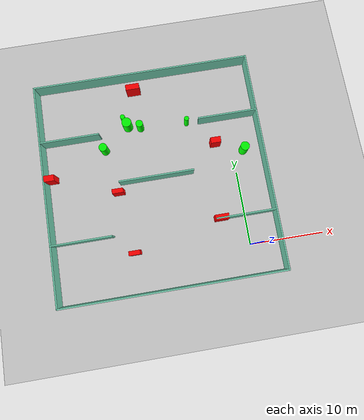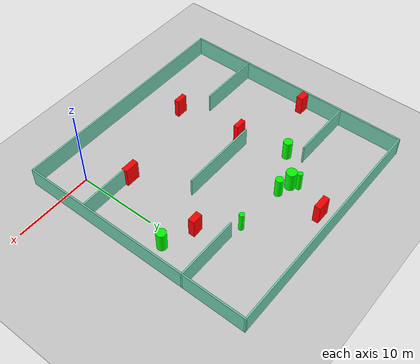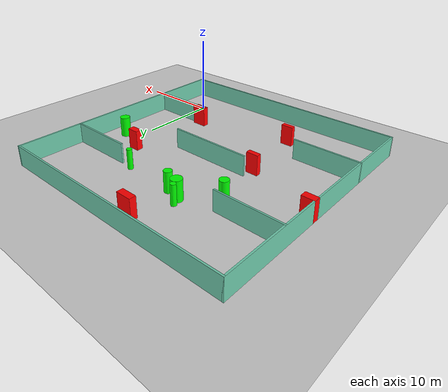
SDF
<sdf version="1.7">
 <world name="default">
  <light name="sun" type="directional">
   <pose>0 0 10 0 -0 0</pose>
   <diffuse>0.8 0.8 0.8 1</diffuse>
   <specular>0.2 0.2 0.2 1</specular>
   <attenuation>
    <range>1000</range>
    <constant>0.9</constant>
    <linear>0.01</linear>
    <quadratic>0.001</quadratic>
   </attenuation>
   <direction>-0.5 0.1 -0.9</direction>
   <spot><inner_angle>0</inner_angle><outer_angle>0</outer_angle><falloff>0</falloff></spot>
  </light>
  <model name="ground_plane">
   <static>1</static>
   <link name="link">
    <collision name="collision">
     <geometry><plane><normal>0 0 1</normal><size>100 100</size></plane></geometry>
     <surface>
      <contact><collide_bitmask>65535</collide_bitmask></contact>
      <friction><ode><mu>100</mu><mu2>50</mu2></ode></friction>
     </surface>
    </collision>
    <visual name="visual">
     <cast_shadows>0</cast_shadows>
     <geometry><plane><normal>0 0 1</normal><size>100 100</size></plane></geometry>
     <material>
      <script><uri>file://media/materials/scripts/gazebo.material</uri><name>Gazebo/Grey</name></script>
     </material>
    </visual>
   </link>
  </model>
  <gravity>0 0 -9.8</gravity>
  <magnetic_field>6e-06 2.3e-05 -4.2e-05</magnetic_field>
  <atmosphere type="adiabatic"/>
  <physics type="ode">
   <max_step_size>0.001</max_step_size>
   <real_time_factor>1</real_time_factor>
   <real_time_update_rate>1000</real_time_update_rate>
  </physics>
  <scene><ambient>0.4 0.4 0.4 1</ambient><background>0.7 0.7 0.7 1</background><shadows>1</shadows></scene>
  <spherical_coordinates>
   <surface_model>EARTH_WGS84</surface_model>
   <latitude_deg>0</latitude_deg>
   <longitude_deg>0</longitude_deg>
   <elevation>0</elevation>
   <heading_deg>0</heading_deg>
  </spherical_coordinates>
  <model name="my_base_walls">
   <link name="Wall_10">
    <collision name="Wall_10_Collision">
     <geometry><box><size>8.2 0.2 2.5</size></box></geometry>
     <pose>0 0 1.25 0 -0 0</pose>
    </collision>
    <visual name="Wall_10_Visual">
     <pose>0 0 1.25 0 -0 0</pose>
     <geometry><box><size>8.2 0.2 2.5</size></box></geometry>
     <material>
      <script><uri>file://media/materials/scripts/gazebo.material</uri><name>Gazebo/Grey</name></script>
      <ambient>0.435294 0.796078 0.67451 1</ambient>
     </material>
     <meta><layer>0</layer></meta>
    </visual>
    <pose>-11 -7 0 0 -0 0</pose>
   </link>
   <link name="Wall_12">
    <collision name="Wall_12_Collision">
     <geometry><box><size>8.2 0.2 2.5</size></box></geometry>
     <pose>0 0 1.25 0 -0 0</pose>
    </collision>
    <visual name="Wall_12_Visual">
     <pose>0 0 1.25 0 -0 0</pose>
     <geometry><box><size>8.2 0.2 2.5</size></box></geometry>
     <material>
      <script><uri>file://media/materials/scripts/gazebo.material</uri><name>Gazebo/Grey</name></script>
      <ambient>0.435294 0.796078 0.67451 1</ambient>
     </material>
     <meta><layer>0</layer></meta>
    </visual>
    <pose>-11 7 0 0 -0 0</pose>
   </link>
   <link name="Wall_14">
    <collision name="Wall_14_Collision">
     <geometry><box><size>8.2 0.2 2.5</size></box></geometry>
     <pose>0 0 1.25 0 -0 0</pose>
    </collision>
    <visual name="Wall_14_Visual">
     <pose>0 0 1.25 0 -0 0</pose>
     <geometry><box><size>8.2 0.2 2.5</size></box></geometry>
     <material>
      <script><uri>file://media/materials/scripts/gazebo.material</uri><name>Gazebo/Grey</name></script>
      <ambient>0.435294 0.796078 0.67451 1</ambient>
     </material>
     <meta><layer>0</layer></meta>
    </visual>
    <pose>11 7 0 0 -0 3.14159</pose>
   </link>
   <link name="Wall_16">
    <collision name="Wall_16_Collision">
     <geometry><box><size>10.2 0.2 2.5</size></box></geometry>
     <pose>0 0 1.25 0 -0 0</pose>
    </collision>
    <visual name="Wall_16_Visual">
     <pose>0 0 1.25 0 -0 0</pose>
     <geometry><box><size>10.2 0.2 2.5</size></box></geometry>
     <material>
      <script><uri>file://media/materials/scripts/gazebo.material</uri><name>Gazebo/Grey</name></script>
      <ambient>0.435294 0.796078 0.67451 1</ambient>
     </material>
     <meta><layer>0</layer></meta>
    </visual>
    <pose>0 0 0 0 -0 3.14159</pose>
   </link>
   <link name="Wall_2">
    <collision name="Wall_2_Collision">
     <geometry><box><size>30.2 0.2 2.5</size></box></geometry>
     <pose>0 0 1.25 0 -0 0</pose>
    </collision>
    <visual name="Wall_2_Visual">
     <pose>0 0 1.25 0 -0 0</pose>
     <geometry><box><size>30.2 0.2 2.5</size></box></geometry>
     <material>
      <script><uri>file://media/materials/scripts/gazebo.material</uri><name>Gazebo/Grey</name></script>
      <ambient>0.435294 0.796078 0.67451 1</ambient>
     </material>
     <meta><layer>0</layer></meta>
    </visual>
    <pose>0 -15 0 0 -0 3.14159</pose>
   </link>
   <link name="Wall_3">
    <collision name="Wall_3_Collision">
     <geometry><box><size>30.2 0.2 2.5</size></box></geometry>
     <pose>0 0 1.25 0 -0 0</pose>
    </collision>
    <visual name="Wall_3_Visual">
     <pose>0 0 1.25 0 -0 0</pose>
     <geometry><box><size>30.2 0.2 2.5</size></box></geometry>
     <material>
      <script><uri>file://media/materials/scripts/gazebo.material</uri><name>Gazebo/Grey</name></script>
      <ambient>0.435294 0.796078 0.67451 1</ambient>
     </material>
     <meta><layer>0</layer></meta>
    </visual>
    <pose>-15 0 0 0 -0 1.5708</pose>
   </link>
   <link name="Wall_4">
    <collision name="Wall_4_Collision">
     <geometry><box><size>30.2 0.2 2.5</size></box></geometry>
     <pose>0 0 1.25 0 -0 0</pose>
    </collision>
    <visual name="Wall_4_Visual">
     <pose>0 0 1.25 0 -0 0</pose>
     <geometry><box><size>30.2 0.2 2.5</size></box></geometry>
     <material>
      <script><uri>file://media/materials/scripts/gazebo.material</uri><name>Gazebo/Grey</name></script>
      <ambient>0.435294 0.796078 0.67451 1</ambient>
     </material>
     <meta><layer>0</layer></meta>
    </visual>
    <pose>0 15 0 0 -0 0</pose>
   </link>
   <link name="Wall_6">
    <collision name="Wall_6_Collision">
     <geometry><box><size>30.2 0.2 2.5</size></box></geometry>
     <pose>0 0 1.25 0 -0 0</pose>
    </collision>
    <visual name="Wall_6_Visual">
     <pose>0 0 1.25 0 -0 0</pose>
     <geometry><box><size>30.2 0.2 2.5</size></box></geometry>
     <material>
      <script><uri>file://media/materials/scripts/gazebo.material</uri><name>Gazebo/Grey</name></script>
      <ambient>0.435294 0.796078 0.67451 1</ambient>
     </material>
     <meta><layer>0</layer></meta>
    </visual>
    <pose>15 0 0 0 -0 1.5708</pose>
   </link>
   <link name="Wall_8">
    <collision name="Wall_8_Collision">
     <geometry><box><size>8.2 0.2 2.5</size></box></geometry>
     <pose>0 0 1.25 0 -0 0</pose>
    </collision>
    <visual name="Wall_8_Visual">
     <pose>0 0 1.25 0 -0 0</pose>
     <geometry><box><size>8.2 0.2 2.5</size></box></geometry>
     <material>
      <script><uri>file://media/materials/scripts/gazebo.material</uri><name>Gazebo/Grey</name></script>
      <ambient>0.435294 0.796078 0.67451 1</ambient>
     </material>
     <meta><layer>0</layer></meta>
    </visual>
    <pose>11 -7 0 0 -0 3.14159</pose>
   </link>
   <static>1</static>
   <pose>-11 11 0 0 -0 0</pose>
  </model>
  <model name="cylinder1">
   <static>1</static>
   <link name="link">
    <inertial>
     <mass>1</mass>
     <inertia><ixx>0.5</ixx><ixy>0</ixy><ixz>0</ixz><iyy>0.5</iyy><iyz>0</iyz><izz>1</izz></inertia>
    </inertial>
    <collision name="collision">
     <geometry><cylinder><radius>0.6599408084052335</radius><length>2.5</length></cylinder></geometry>
    </collision>
    <visual name="visual">
     <geometry><cylinder><radius>0.6599408084052335</radius><length>2.5</length></cylinder></geometry>
     <material>
      <ambient>0 1 0 1</ambient>
      <diffuse>0 1 0 1</diffuse>
      <specular>0.1 0.1 0.1 1</specular>
      <emissive>0 0 0 0</emissive>
     </material>
    </visual>
   </link>
   <pose>-13.935841101003437 19.024712092563004 1.25 0 0 0</pose>
  </model>
  <model name="cylinder2">
   <static>1</static>
   <link name="link">
    <inertial>
     <mass>1</mass>
     <inertia><ixx>0.5</ixx><ixy>0</ixy><ixz>0</ixz><iyy>0.5</iyy><iyz>0</iyz><izz>1</izz></inertia>
    </inertial>
    <collision name="collision">
     <geometry><cylinder><radius>0.3193071340591552</radius><length>2.5</length></cylinder></geometry>
    </collision>
    <visual name="visual">
     <geometry><cylinder><radius>0.3193071340591552</radius><length>2.5</length></cylinder></geometry>
     <material>
      <ambient>0 1 0 1</ambient>
      <diffuse>0 1 0 1</diffuse>
      <specular>0.1 0.1 0.1 1</specular>
      <emissive>0 0 0 0</emissive>
     </material>
    </visual>
   </link>
   <pose>-5.682111479979074 18.21949315594405 1.25 0 0 0</pose>
  </model>
  <model name="cylinder3">
   <static>1</static>
   <link name="link">
    <inertial>
     <mass>1</mass>
     <inertia><ixx>0.5</ixx><ixy>0</ixy><ixz>0</ixz><iyy>0.5</iyy><iyz>0</iyz><izz>1</izz></inertia>
    </inertial>
    <collision name="collision">
     <geometry><cylinder><radius>0.6067043016929332</radius><length>2.5</length></cylinder></geometry>
    </collision>
    <visual name="visual">
     <geometry><cylinder><radius>0.6067043016929332</radius><length>2.5</length></cylinder></geometry>
     <material>
      <ambient>0 1 0 1</ambient>
      <diffuse>0 1 0 1</diffuse>
      <specular>0.1 0.1 0.1 1</specular>
      <emissive>0 0 0 0</emissive>
     </material>
    </visual>
   </link>
   <pose>1.5121297173744601 13.057133490670005 1.25 0 0 0</pose>
  </model>
  <model name="cylinder4">
   <static>1</static>
   <link name="link">
    <inertial>
     <mass>1</mass>
     <inertia><ixx>0.5</ixx><ixy>0</ixy><ixz>0</ixz><iyy>0.5</iyy><iyz>0</iyz><izz>1</izz></inertia>
    </inertial>
    <collision name="collision">
     <geometry><cylinder><radius>0.48695035980506224</radius><length>2.5</length></cylinder></geometry>
    </collision>
    <visual name="visual">
     <geometry><cylinder><radius>0.48695035980506224</radius><length>2.5</length></cylinder></geometry>
     <material>
      <ambient>0 1 0 1</ambient>
      <diffuse>0 1 0 1</diffuse>
      <specular>0.1 0.1 0.1 1</specular>
      <emissive>0 0 0 0</emissive>
     </material>
    </visual>
   </link>
   <pose>-12.217194983782557 18.564566263395136 1.25 0 0 0</pose>
  </model>
  <model name="cylinder5">
   <static>1</static>
   <link name="link">
    <inertial>
     <mass>1</mass>
     <inertia><ixx>0.5</ixx><ixy>0</ixy><ixz>0</ixz><iyy>0.5</iyy><iyz>0</iyz><izz>1</izz></inertia>
    </inertial>
    <collision name="collision">
     <geometry><cylinder><radius>0.32706972017480823</radius><length>2.5</length></cylinder></geometry>
    </collision>
    <visual name="visual">
     <geometry><cylinder><radius>0.32706972017480823</radius><length>2.5</length></cylinder></geometry>
     <material>
      <ambient>0 1 0 1</ambient>
      <diffuse>0 1 0 1</diffuse>
      <specular>0.1 0.1 0.1 1</specular>
      <emissive>0 0 0 0</emissive>
     </material>
    </visual>
   </link>
   <pose>-14.362791896280584 19.89371892074397 1.25 0 0 0</pose>
  </model>
  <model name="cylinder6">
   <static>1</static>
   <link name="link">
    <inertial>
     <mass>1</mass>
     <inertia><ixx>0.5</ixx><ixy>0</ixy><ixz>0</ixz><iyy>0.5</iyy><iyz>0</iyz><izz>1</izz></inertia>
    </inertial>
    <collision name="collision">
     <geometry><cylinder><radius>0.5565522570341015</radius><length>2.5</length></cylinder></geometry>
    </collision>
    <visual name="visual">
     <geometry><cylinder><radius>0.5565522570341015</radius><length>2.5</length></cylinder></geometry>
     <material>
      <ambient>0 1 0 1</ambient>
      <diffuse>0 1 0 1</diffuse>
      <specular>0.1 0.1 0.1 1</specular>
      <emissive>0 0 0 0</emissive>
     </material>
    </visual>
   </link>
   <pose>-17.571562964528532 16.03904999633273 1.25 0 0 0</pose>
  </model>
  <model name="box1">
   <static>1</static>
   <link name="link">
    <inertial>
     <mass>1</mass>
     <inertia><ixx>0.083</ixx><ixy>0</ixy><ixz>0</ixz><iyy>0.083</iyy><iyz>0</iyz><izz>0.083</izz></inertia>
    </inertial>
    <collision name="collision">
     <geometry><box><size>1.4946642965720938 0.6071045622675112 2.5</size></box></geometry>
    </collision>
    <visual name="visual">
     <geometry><box><size>1.4946642965720938 0.6071045622675112 2.5</size></box></geometry>
     <material>
      <ambient>1 0 0 1</ambient>
      <diffuse>1 0 0 1</diffuse>
      <specular>0.1 0.1 0.1 1</specular>
      <emissive>0 0 0 0</emissive>
     </material>
    </visual>
    <sensor name="my_contact" type="contact">
     <contact><collision>box_collision</collision><topic>__default_topic__</topic></contact>
    </sensor>
   </link>
   <pose>-16.4221203907832 9.787314625485072 1.25 0 0 0</pose>
  </model>
  <model name="box2">
   <static>1</static>
   <link name="link">
    <inertial>
     <mass>1</mass>
     <inertia><ixx>0.083</ixx><ixy>0</ixy><ixz>0</ixz><iyy>0.083</iyy><iyz>0</iyz><izz>0.083</izz></inertia>
    </inertial>
    <collision name="collision">
     <geometry><box><size>1.8911843673089246 0.7806829663266559 2.5</size></box></geometry>
    </collision>
    <visual name="visual">
     <geometry><box><size>1.8911843673089246 0.7806829663266559 2.5</size></box></geometry>
     <material>
      <ambient>1 0 0 1</ambient>
      <diffuse>1 0 0 1</diffuse>
      <specular>0.1 0.1 0.1 1</specular>
      <emissive>0 0 0 0</emissive>
     </material>
    </visual>
    <sensor name="my_contact" type="contact">
     <contact><collision>box_collision</collision><topic>__default_topic__</topic></contact>
    </sensor>
   </link>
   <pose>-12.415218725513391 24.037971876535167 1.25 0 0 0</pose>
  </model>
  <model name="box3">
   <static>1</static>
   <link name="link">
    <inertial>
     <mass>1</mass>
     <inertia><ixx>0.083</ixx><ixy>0</ixy><ixz>0</ixz><iyy>0.083</iyy><iyz>0</iyz><izz>0.083</izz></inertia>
    </inertial>
    <collision name="collision">
     <geometry><box><size>1.5383158876210457 0.8343902723881076 2.5</size></box></geometry>
    </collision>
    <visual name="visual">
     <geometry><box><size>1.5383158876210457 0.8343902723881076 2.5</size></box></geometry>
     <material>
      <ambient>1 0 0 1</ambient>
      <diffuse>1 0 0 1</diffuse>
      <specular>0.1 0.1 0.1 1</specular>
      <emissive>0 0 0 0</emissive>
     </material>
    </visual>
    <sensor name="my_contact" type="contact">
     <contact><collision>box_collision</collision><topic>__default_topic__</topic></contact>
    </sensor>
   </link>
   <pose>-25.33095247264571 12.960056605658988 1.25 0 0 0</pose>
  </model>
  <model name="box4">
   <static>1</static>
   <link name="link">
    <inertial>
     <mass>1</mass>
     <inertia><ixx>0.083</ixx><ixy>0</ixy><ixz>0</ixz><iyy>0.083</iyy><iyz>0</iyz><izz>0.083</izz></inertia>
    </inertial>
    <collision name="collision">
     <geometry><box><size>1.3925481858765445 0.7979468591705734 2.5</size></box></geometry>
    </collision>
    <visual name="visual">
     <geometry><box><size>1.3925481858765445 0.7979468591705734 2.5</size></box></geometry>
     <material>
      <ambient>1 0 0 1</ambient>
      <diffuse>1 0 0 1</diffuse>
      <specular>0.1 0.1 0.1 1</specular>
      <emissive>0 0 0 0</emissive>
     </material>
    </visual>
    <sensor name="my_contact" type="contact">
     <contact><collision>box_collision</collision><topic>__default_topic__</topic></contact>
    </sensor>
   </link>
   <pose>-2.2651845211628334 14.569078834451286 1.25 0 0 0</pose>
  </model>
  <model name="box5">
   <static>1</static>
   <link name="link">
    <inertial>
     <mass>1</mass>
     <inertia><ixx>0.083</ixx><ixy>0</ixy><ixz>0</ixz><iyy>0.083</iyy><iyz>0</iyz><izz>0.083</izz></inertia>
    </inertial>
    <collision name="collision">
     <geometry><box><size>1.8387299094725904 0.7427926222470354 2.5</size></box></geometry>
    </collision>
    <visual name="visual">
     <geometry><box><size>1.8387299094725904 0.7427926222470354 2.5</size></box></geometry>
     <material>
      <ambient>1 0 0 1</ambient>
      <diffuse>1 0 0 1</diffuse>
      <specular>0.1 0.1 0.1 1</specular>
      <emissive>0 0 0 0</emissive>
     </material>
    </visual>
    <sensor name="my_contact" type="contact">
     <contact><collision>box_collision</collision><topic>__default_topic__</topic></contact>
    </sensor>
   </link>
   <pose>-3.289345099297641 4.114665957765167 1.25 0 0 0</pose>
  </model>
  <model name="box6">
   <static>1</static>
   <link name="link">
    <inertial>
     <mass>1</mass>
     <inertia><ixx>0.083</ixx><ixy>0</ixy><ixz>0</ixz><iyy>0.083</iyy><iyz>0</iyz><izz>0.083</izz></inertia>
    </inertial>
    <collision name="collision">
     <geometry><box><size>1.4905462283768502 0.5916353451087334 2.5</size></box></geometry>
    </collision>
    <visual name="visual">
     <geometry><box><size>1.4905462283768502 0.5916353451087334 2.5</size></box></geometry>
     <material>
      <ambient>1 0 0 1</ambient>
      <diffuse>1 0 0 1</diffuse>
      <specular>0.1 0.1 0.1 1</specular>
      <emissive>0 0 0 0</emissive>
     </material>
    </visual>
    <sensor name="my_contact" type="contact">
     <contact><collision>box_collision</collision><topic>__default_topic__</topic></contact>
    </sensor>
   </link>
   <pose>-15.35275657407962 1.3801287385425862 1.25 0 0 0</pose>
  </model>
 </world>
</sdf>
